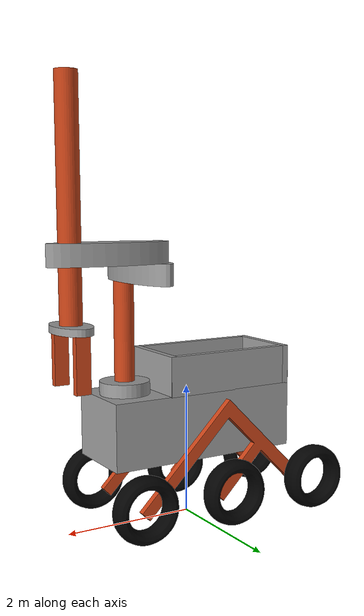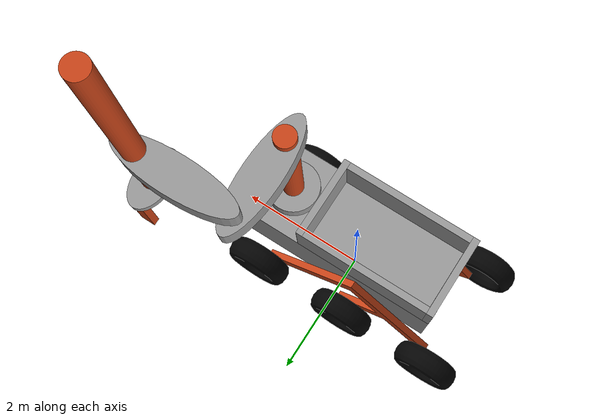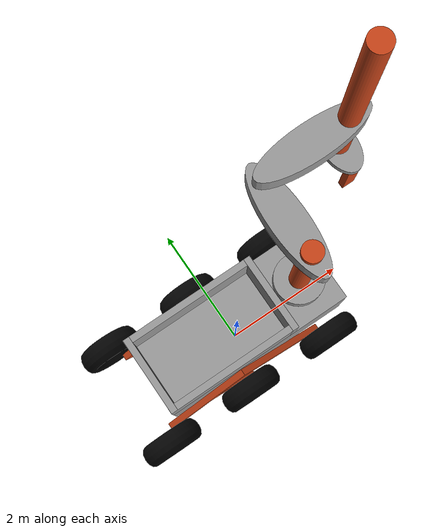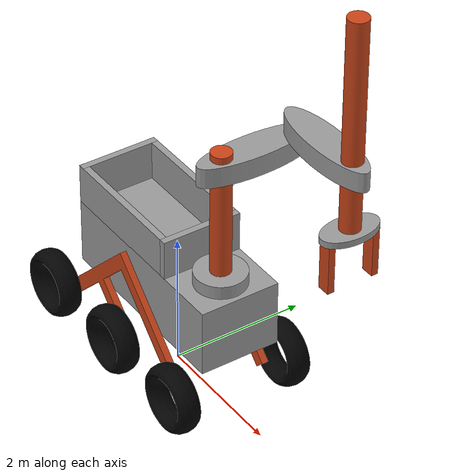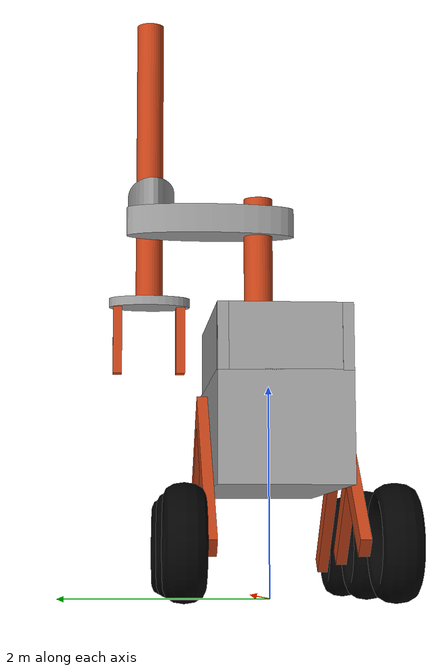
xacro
<?xml version="1.0"?>
<robot name="rover" xmlns:xacro="http://www.ros.org/wiki/xacro">

  <xacro:include filename="$(find rover_description)/urdf/base/robot_base.urdf.xacro"/>
  <xacro:include filename="$(find rover_description)/urdf/wheels/rover_wheels.urdf.xacro"/>
  <xacro:include filename="$(find rover_description)/urdf/arm/scara.urdf.xacro"/>
  <xacro:include filename="$(find rover_description)/urdf/sensors/camera.urdf.xacro"/>
  <xacro:include filename="$(find rover_description)/urdf/sensors/imu_sensor.urdf.xacro"/>

  <xacro:property name="PI" value="3.1415926535897931"/>

  <xacro:arg name="robot_ns" default=""/>
  <xacro:arg name="prefix" default=""/>

  <xacro:robot_base/>
  <xacro:rover_wheels parent="base_link"/>
  <xacro:scara parent="base_link"/>

  <xacro:sensor_camera node_name="front_camera" node_namespace="$(arg robot_ns)" frame_prefix="$(arg prefix)front_camera_" parent="$(arg prefix)base_link">
  <origin xyz="1.4 0.0 0.5" rpy="0 0 0"/>
  </xacro:sensor_camera>
  <xacro:sensor_camera node_name="arm_camera" node_namespace="$(arg robot_ns)" frame_prefix="$(arg prefix)arm_camera_" parent="$(arg prefix)l3_arm_link" >
          <origin xyz="0.0 0.0 -1.2" rpy="0 1.57 1.57"/>
  </xacro:sensor_camera>

  <xacro:sensor_imu ns="$(arg robot_ns)" prefix="$(arg prefix)imu_" parent="$(arg prefix)base_link">
          <origin xyz="0.0 0.0 0.0" rpy="0 0 0"/>
  </xacro:sensor_imu>

<!-- Gazebo ROS control plugins -->
<xacro:include filename="$(find rover_description)/urdf/ros2_control.urdf.xacro"/>
<xacro:arg name="config_controllers" default="$(find rover_description)/config/robot_controllers.yaml"/>
<xacro:arg name="update_rate" default="20"/>
<xacro:ros2_control/>

</robot>

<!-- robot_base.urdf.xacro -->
<robot name="robot_body" xmlns:xacro="http://wiki.ros.org/xacro">
    <xacro:macro name="robot_base">
    <xacro:property name="mesh_path" value="file://$(find rover_description)/meshes/dae"/>
    <link name="base_footprint"/>

    <joint name="base_footprint_to_base_link" type="fixed">
        <origin xyz="0 0 1.5" rpy="0 0 0"/>
        <parent link="base_footprint"/>
        <child link="base_link"/>
    </joint>

    <link name="base_link"/>

    <joint name="base_link_to_body_link" type="fixed">
        <origin xyz="0 0 0" rpy="0 0 0"/>
        <parent link="base_link"/>
        <child link="body_link"/>
    </joint>

    <joint name="body_back_box_link_joint" type="fixed">
        <origin rpy="0.00000 0.00000 0.00000" xyz="-1.45000 0.00000 0.79130"/>
        <parent link="body_link"/>
        <child link="body_back_box_link"/>
    </joint>
    <joint name="body_front_box_link_joint" type="fixed">
        <origin rpy="0.00000 0.00000 0.00000" xyz="0.54967 0.00000 0.79130"/>
        <parent link="body_link"/>
        <child link="body_front_box_link"/>
    </joint>
    <joint name="body_left_box_link_joint" type="fixed">
        <origin rpy="0.00000 0.00000 1.57080" xyz="-0.45192 -0.55000 0.79129"/>
        <parent link="body_link"/>
        <child link="body_left_box_link"/>
    </joint>
    <joint name="body_right_box_link_joint" type="fixed">
        <origin rpy="0.00000 0.00000 1.57080" xyz="-0.45192 0.55000 0.79129"/>
        <parent link="body_link"/>
        <child link="body_right_box_link"/>
    </joint>

    <link name="body_link">
        <collision name="body_collision">
        <origin rpy="0.00000 0.00000 0.00000" xyz="0.00000 0.00000 0.00000"/>
        <geometry>
            <box size="3.00000 1.20000 1.00000"/>
        </geometry>
        </collision>
        <inertial>
        <inertia ixx="10.16667" ixy="0.00000" ixz="0.00000" iyy="41.66667" iyz="0.00000" izz="43.50000"/>
        <origin rpy="0.00000 0.00000 0.00000" xyz="0.00000 0.00000 0.00000"/>
        <mass value="50.00000"/>
        </inertial>
        <visual name="body">
        <material name="Material.005"/>
        <origin rpy="0.00000 0.00000 0.00000" xyz="0.00000 0.00000 0.00000"/>
        <geometry>
            <box size="3.00000 1.20000 1.00000"/>
        </geometry>
        </visual>
    </link>

    <link name="body_front_box_link">
        <collision name="body_front_box_collision">
            <origin rpy="0.00000 0.00000 0.00000" xyz="0.00000 0.00000 0.00000"/>
            <geometry>
            <box size="0.10000 1.20000 0.60000"/>
            </geometry>
        </collision>
        <visual name="body_front_box">
            <material name="Material.005"/>
            <origin rpy="0.00000 0.00000 0.00000" xyz="0.00000 0.00000 0.00000"/>
            <geometry>
            <box size="0.10000 1.20000 0.60000"/>
            </geometry>
        </visual>
    </link>
    <link name="body_left_box_link">
        <collision name="body_left_box_collision">
            <origin rpy="0.00000 0.00000 -0.00000" xyz="-0.00000 -0.00000 0.00000"/>
            <geometry>
            <box size="0.10000 2.10000 0.60000"/>
            </geometry>
        </collision>
        <visual name="body_left_box">
            <material name="Material.005"/>
            <origin rpy="0.00000 0.00000 0.00000" xyz="0.00000 -0.00000 0.00000"/>
            <geometry>
            <box size="0.10000 2.10000 0.60000"/>
            </geometry>
        </visual>
        </link>
        <link name="body_right_box_link">
        <collision name="body_right_box_collision">
            <origin rpy="0.00000 0.00000 -0.00000" xyz="0.00000 0.00000 0.00000"/>
            <geometry>
            <box size="0.10000 2.10000 0.60000"/>
            </geometry>
        </collision>
        <visual name="body_right_box">
            <material name="Material.005"/>
            <origin rpy="0.00000 0.00000 0.00000" xyz="0.00000 0.00000 0.00000"/>
            <geometry>
            <box size="0.10000 2.10000 0.60000"/>
            </geometry>
        </visual>
    </link>

    <link name="body_back_box_link">
        <collision name="body_back_box_collision">
            <origin rpy="0.00000 0.00000 0.00000" xyz="0.00000 0.00000 0.00000"/>
            <geometry>
                <box size="0.10000 1.20000 0.60000"/>
            </geometry>
        </collision>
        <visual name="body_back_box">
            <material name="Material.005"/>
            <origin rpy="0.00000 0.00000 0.00000" xyz="0.00000 0.00000 0.00000"/>
            <geometry>
                <box size="0.10000 1.20000 0.60000"/>
            </geometry>
        </visual>
    </link>

    </xacro:macro>

</robot>

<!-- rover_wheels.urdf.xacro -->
<robot name="rover_wheels" xmlns:xacro="http://wiki.ros.org/xacro">

  <xacro:property name="mesh_path" value="file://$(find rover_description)/meshes/dae"/>

  <xacro:macro name="rover_wheels" params="parent">

    <joint name="axis_left_link_joint" type="fixed">
      <origin rpy="1.60974 -0.01480 -0.06763" xyz="-0.35085 -0.70000 -0.47400"/>
      <parent link="body_link"/>
      <child link="axis_left_link"/>
    </joint>

    <joint name="axis_right_link_joint" type="fixed">
      <origin rpy="-1.57080 0.00000 -0.02477" xyz="-0.35085 0.70000 -0.47400"/>
      <parent link="body_link"/>
      <child link="axis_right_link"/>
    </joint>

    <link name="axis_left_link">
      <collision name="axis_left_collision">
        <origin rpy="-1.55093 0.07494 0.77002" xyz="-0.01304 0.01116 -0.07670"/>
        <geometry>
          <mesh filename="${mesh_path}/Cube.005.dae" scale="0.95000 0.05000 0.10000"/>
        </geometry>
      </collision>
      <inertial>
        <inertia ixx="0.00100" ixy="-0.00000" ixz="-0.00000" iyy="0.00100" iyz="0.00000" izz="0.00100"/>
        <origin rpy="0.00000 0.00000 0.00000" xyz="0.00000 -0.00000 0.00000"/>
        <mass value="3.00000"/>
      </inertial>
      <visual name="axis_left">
        <material name="orange"/>
        <origin rpy="-1.55093 0.07494 0.77002" xyz="-0.00365 -0.00204 -0.05382"/>
        <geometry>
          <mesh filename="${mesh_path}/Cube.005.dae" scale="0.95000 0.05000 0.10000"/>
        </geometry>
      </visual>
    </link>

    <link name="axis_right_link">
      <collision name="axis_right_collision">
        <origin rpy="1.58831 -0.01751 -0.78555" xyz="-0.02891 0.01341 -0.04021"/>
        <geometry>
          <mesh filename="${mesh_path}/Cube.007.dae" scale="0.95000 0.05000 0.10000"/>
        </geometry>
      </collision>
      <inertial>
        <inertia ixx="0.38352" ixy="-0.00000" ixz="0.08781" iyy="1.49498" iyz="0.00000" izz="1.11529"/>
        <origin rpy="0.00000 0.00000 0.00000" xyz="0.00095 0.00000 -0.03832"/>
        <mass value="3.00000"/>
      </inertial>
      <visual name="axis_right">
        <material name="orange"/>
        <origin rpy="1.58831 -0.01751 -0.78555" xyz="0.00095 0.00000 -0.03832"/>
        <geometry>
          <mesh filename="${mesh_path}/Cube.007.dae" scale="0.95000 0.05000 0.10000"/>
        </geometry>
      </visual>
    </link>

    <joint name="back_left_wheel_link_joint" type="continuous">
      <limit effort="100.0" velocity="20.0"/>
      <dynamics damping="0.05" friction="0.1"/>
      <origin rpy="-0.03655 0.06700 -0.01743" xyz="-1.43329 -0.48979 0.41533"/>
      <parent link="axis_left_link"/>
      <child link="back_left_wheel_link"/>
      <axis xyz="0 0 1"/>
    </joint>

    <joint name="front_left_wheel_link_joint" type="continuous">
      <limit effort="100.0" velocity="20.0"/>
      <dynamics damping="0.05" friction="0.1"/>
      <origin rpy="-0.03655 0.06700 -0.01743" xyz="1.55952 -0.54195 0.21447"/>
      <parent link="axis_left_link"/>
      <child link="front_left_wheel_link"/>
      <axis xyz="0 0 1"/>
    </joint>

    <joint name="mid_left_wheel_link_joint" type="continuous">
      <limit effort="100.0" velocity="20.0"/>
      <dynamics damping="0.05" friction="0.1"/>
      <origin rpy="-0.03655 0.06700 -0.01743" xyz="0.06311 -0.51587 0.31490"/>
      <parent link="axis_left_link"/>
      <child link="mid_left_wheel_link"/>
      <axis xyz="0 0 1"/>
    </joint>

    <joint name="back_right_wheel_link_joint" type="continuous">
      <limit effort="100.0" velocity="20.0"/>
      <dynamics damping="0.05" friction="0.1"/>
      <origin rpy="3.14159 -0.02477 -0.00000" xyz="-1.45614 0.52600 0.26402"/>
      <parent link="axis_right_link"/>
      <child link="back_right_wheel_link"/>
      <axis xyz="0 0 1"/>
    </joint>

    <joint name="front_right_wheel_link_joint" type="continuous">
      <limit effort="100.0" velocity="20.0"/>
      <dynamics damping="0.05" friction="0.1"/>
      <origin rpy="3.14159 -0.02477 -0.00000" xyz="1.54294 0.52600 0.33832"/>
      <parent link="axis_right_link"/>
      <child link="front_right_wheel_link"/>
      <axis xyz="0 0 1"/>
    </joint>

    <joint name="mid_right_wheel_link_joint" type="continuous">
      <limit effort="100.0" velocity="20.0"/>
      <dynamics damping="0.05" friction="0.1"/>
      <origin rpy="3.14159 -0.02477 -0.00000" xyz="0.04340 0.52600 0.30117"/>
      <parent link="axis_right_link"/>
      <child link="mid_right_wheel_link"/>
      <axis xyz="0 0 1"/>
    </joint>

    <link name="back_left_wheel_link">
      <collision name="back_left_wheel_collision">
        <origin rpy="-0.00497 -0.00000 0.00000" xyz="-0.00000 0.00042 -0.12869"/>
        <geometry>
          <cylinder length="0.2" radius="0.5"/>
        </geometry>
      </collision>
      <inertial>
        <inertia ixx="0.19403" ixy="-0.00000" ixz="0.00000" iyy="0.35189" iyz="-0.00000" izz="0.19403"/>
        <origin rpy="0.00000 0.00000 0.00000" xyz="-0.00000 0.00042 -0.12869"/>
        <mass value="3.00000"/>
      </inertial>
      <visual name="back_left_wheel">
        <material name="wheels"/>
        <origin rpy="-0.00249 -0.00000 0.00000" xyz="-0.00000 0.00042 -0.12869"/>
        <geometry>
          <mesh filename="${mesh_path}/Torus.005.dae" scale="0.40000 0.40000 0.70000"/>
        </geometry>
      </visual>
    </link>

    <link name="front_left_wheel_link">
      <collision name="front_left_wheel_collision">
        <origin rpy="-0.00497 -0.00000 0.00000" xyz="0.00000 0.00043 -0.12796"/>
        <geometry>
          <cylinder length="0.2" radius="0.5"/>
        </geometry>
      </collision>
      <inertial>
        <inertia ixx="0.19403" ixy="-0.00000" ixz="0.00000" iyy="0.35189" iyz="-0.00000" izz="0.19403"/>
        <origin rpy="0.00000 0.00000 0.00000" xyz="0.00000 0.00043 -0.12796"/>
        <mass value="3.00000"/>
      </inertial>
      <visual name="front_left_wheel">
        <material name="wheels"/>
        <origin rpy="-0.00249 -0.00000 0.00000" xyz="0.00000 0.00043 -0.12796"/>
        <geometry>
          <mesh filename="${mesh_path}/Torus.009.dae" scale="0.40000 0.40000 0.70000"/>
        </geometry>
      </visual>
    </link>

      <link name="mid_left_wheel_link">
      <collision name="mid_left_wheel_collision">
        <origin rpy="-0.00497 -0.00000 0.00000" xyz="0.00000 0.00042 -0.12869"/>
        <geometry>
          <cylinder length="0.2" radius="0.5"/>
        </geometry>
      </collision>
      <inertial>
        <inertia ixx="0.19403" ixy="-0.00000" ixz="0.00000" iyy="0.35189" iyz="-0.00000" izz="0.19403"/>
        <origin rpy="0.00000 0.00000 0.00000" xyz="0.00000 0.00042 -0.12869"/>
        <mass value="3.00000"/>
      </inertial>
      <visual name="mid_left_wheel">
        <material name="wheels"/>
        <origin rpy="-0.00249 -0.00000 0.00000" xyz="0.00000 0.00042 -0.12869"/>
        <geometry>
          <mesh filename="${mesh_path}/Torus.006.dae" scale="0.40000 0.40000 0.70000"/>
        </geometry>
      </visual>
    </link>

    <link name="back_right_wheel_link">
      <collision name="back_right_wheel_collision">
        <origin rpy="-3.14159 0.00000 0.00000" xyz="-0.00000 0.00000 0.10000"/>
        <geometry>
          <cylinder length="0.2" radius="0.5"/>
        </geometry>
      </collision>
      <inertial>
        <inertia ixx="0.19403" ixy="0.00000" ixz="0.00000" iyy="0.35189" iyz="-0.00000" izz="0.19403"/>
        <origin rpy="0.00000 0.00000 0.00000" xyz="-0.00000 0.00000 0.10000"/>
        <mass value="3.00000"/>
      </inertial>
      <visual name="back_right_wheel">
        <material name="wheels"/>
        <origin rpy="-0.00000 0.00000 0.00000" xyz="-0.00000 0.00000 0.10000"/>
        <geometry>
          <mesh filename="${mesh_path}/Torus.dae" scale="0.40000 0.40000 0.70000"/>
        </geometry>
      </visual>
    </link>

    <link name="front_right_wheel_link">
      <collision name="front_right_wheel_collision">
        <origin rpy="-3.14159 0.00000 0.00000" xyz="0.00000 0.00000 0.10000"/>
        <geometry>
          <cylinder length="0.2" radius="0.5"/>
        </geometry>
      </collision>
      <inertial>
        <inertia ixx="0.19403" ixy="0.00000" ixz="0.00000" iyy="0.35189" iyz="-0.00000" izz="0.19403"/>
        <origin rpy="0.00000 0.00000 0.00000" xyz="-0.00000 0.00000 0.10000"/>
        <mass value="3.00000"/>
      </inertial>
      <visual name="front_right_wheel">
        <material name="wheels"/>
        <origin rpy="-0.00000 0.00000 0.00000" xyz="0.00000 0.00000 0.10000"/>
        <geometry>
          <mesh filename="${mesh_path}/Torus.008.dae" scale="0.40000 0.40000 0.70000"/>
        </geometry>
      </visual>
    </link>

    <link name="mid_right_wheel_link">
      <collision name="mid_right_wheel_collision">
        <origin rpy="-3.14159 0.00000 0.00000" xyz="-0.00000 0.00000 0.11498"/>
        <geometry>
          <cylinder length="0.2" radius="0.5"/>
        </geometry>
      </collision>
      <inertial>
        <inertia ixx="0.19403" ixy="0.00000" ixz="0.00000" iyy="0.35189" iyz="-0.00000" izz="0.19403"/>
        <origin rpy="0.00000 0.00000 0.00000" xyz="-0.00000 0.00000 0.10000"/>
        <mass value="3.00000"/>
      </inertial>
      <visual name="mid_right_wheel">
        <material name="wheels"/>
        <origin rpy="-0.00000 0.00000 0.00000" xyz="-0.00000 0.00000 0.10000"/>
        <geometry>
          <mesh filename="${mesh_path}/Torus.007.dae" scale="0.40000 0.40000 0.70000"/>
        </geometry>
      </visual>
    </link>

    <gazebo reference="back_left_wheel_link">
      <mu1>5</mu1>
      <mu2>5</mu2>
    </gazebo>
    <gazebo reference="mid_left_wheel_link">
      <mu1>5</mu1>
      <mu2>5</mu2>
    </gazebo>
    <gazebo reference="front_left_wheel_link">
      <mu1>5</mu1>
      <mu2>5</mu2>
    </gazebo>
    <gazebo reference="back_right_wheel_link">
      <mu1>5</mu1>
      <mu2>5</mu2>
    </gazebo>
    <gazebo reference="mid_right_wheel_link">
      <mu1>5</mu1>
      <mu2>5</mu2>
    </gazebo>
    <gazebo reference="front_right_wheel_link">
      <mu1>5</mu1>
      <mu2>5</mu2>
    </gazebo>

    <material name="wheels">
      <color rgba="0.01176 0.01176 0.01176 1.00000"/>
    </material>

  </xacro:macro>

</robot>

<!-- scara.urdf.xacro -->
<robot name="scara" xmlns:xacro="http://wiki.ros.org/xacro">
    <xacro:include filename="$(find rover_description)/urdf/arm/gripper.urdf.xacro"/>
    <xacro:property name="mesh_path" value="file://$(find rover_description)/meshes/dae"/>
    <xacro:macro name="scara" params="parent">

    <joint name="fixed_base_arm_link_joint" type="fixed">
        <origin rpy="0.00000 0.00000 0.00000" xyz="1.05420 -0.01261 0.59836"/>
        <parent link="body_link"/>
        <child link="fixed_base_arm_link"/>
    </joint>

    <joint name="l0_arm_link_joint" type="fixed">
        <origin rpy="0.00000 0.00000 0.00000" xyz="0.00000 0.00000 -0.04593"/>
        <parent link="fixed_base_arm_link"/>
        <child link="l0_arm_link"/>
    </joint>
    <joint name="l1_arm_link_joint" type="continuous">
        <limit effort="150.00000" velocity="3.00000"/>
        <origin rpy="0.00000 0.00000 0.00000" xyz="0.00000 0.00480 1.93831"/>
        <parent link="l0_arm_link"/>
        <child link="l1_arm_link"/>
        <axis xyz="0.00000 0.00000 1.00000"/>
    </joint>
    <joint name="l2_arm_link_joint" type="continuous">
        <limit effort="150.00000" velocity="3.00000"/>
        <origin rpy="0.00000 0.00000 1.57080" xyz="0.04172 1.09520 0.15762"/>
        <parent link="l1_arm_link"/>
        <child link="l2_arm_link"/>
        <axis xyz="0.00000 0.00000 1.00000"/>
    </joint>
    <joint name="l3_arm_link_joint" type="prismatic">
        <limit lower="-2.40000" upper="0.80000" effort="150.00000" velocity="3.00000"/>
        <origin rpy="0.00000 0.00000 -1.57080" xyz="0.00000 -1.26247 0.09521"/>
        <parent link="l2_arm_link"/>
        <child link="l3_arm_link"/>
        <axis xyz="0.00000 0.00000 1.00000"/>
    </joint>
    <joint name="clamp_base_link_joint" type="continuous">
      <limit effort="150.00000" velocity="3.00000"/>
      <origin rpy="0.00000 0.00000 0.00000" xyz="-0.00223 -0.00306 -0.95588"/>
      <parent link="l3_arm_link"/>
      <child link="clamp_base_link"/>
      <axis xyz="0.00000 0.00000 1.00000"/>
    </joint>

    <link name="fixed_base_arm_link">
        <collision name="fixed_base_arm_collision">
            <origin rpy="0.00000 0.00000 0.00000" xyz="0.00000 0.00000 0.00000"/>
            <geometry>
                <mesh filename="${mesh_path}/Cylinder.dae" scale="0.37500 0.37500 0.10000"/>
            </geometry>
        </collision>
        <inertial>
            <inertia ixx="0.19132" ixy="0.00000" ixz="0.00000" iyy="0.19132" iyz="0.00000" izz="0.34931"/>
            <origin rpy="0.00000 0.00000 0.00000" xyz="0.00000 0.00000 0.00000"/>
            <mass value="5.00000"/>
        </inertial>
        <visual name="fixed_base_arm">
            <material name="Material.005"/>
            <origin rpy="0.00000 0.00000 0.00000" xyz="0.00000 0.00000 0.00000"/>
            <geometry>
                <mesh filename="${mesh_path}/Cylinder.dae" scale="0.37500 0.37500 0.10000"/>
            </geometry>
        </visual>
    </link>

    <link name="l0_arm_link">
        <collision name="l0_arm_collision">
            <origin rpy="0.00000 0.00000 0.00000" xyz="0.00000 0.00000 1.04593"/>
            <geometry>
                <mesh filename="${mesh_path}/Cylinder.001.dae" scale="0.15000 0.15000 1.00000"/>
            </geometry>
        </collision>
        <inertial>
            <inertia ixx="1.69461" ixy="0.00000" ixz="0.00000" iyy="1.69461" iyz="0.00000" izz="0.05589"/>
            <origin rpy="0.00000 0.00000 0.00000" xyz="0.00000 0.00000 1.04593"/>
            <mass value="5.00000"/>
        </inertial>
        <visual name="l0_arm">
            <material name="orange"/>
            <origin rpy="0.00000 0.00000 0.00000" xyz="0.00000 0.00000 1.04593"/>
            <geometry>
                <mesh filename="${mesh_path}/Cylinder.001.dae" scale="0.15000 0.15000 1.00000"/>
            </geometry>
        </visual>
  </link>
  <link name="l1_arm_link">
    <collision name="l1_arm_collision">
      <origin rpy="0.00000 0.00000 0.00000" xyz="0.00000 0.49520 -0.14238"/>
      <geometry>
        <mesh filename="${mesh_path}/Cylinder.002.dae" scale="0.25000 0.87500 0.15000"/>
      </geometry>
    </collision>
    <inertial>
      <inertia ixx="0.98840" ixy="-0.00000" ixz="0.00000" iyy="0.11512" iyz="-0.00000" izz="1.02853"/>
      <origin rpy="0.00000 0.00000 0.00000" xyz="0.00000 0.49520 -0.14238"/>
      <mass value="5.00000"/>
    </inertial>
    <visual name="l1_arm">
      <material name="Material.005"/>
      <origin rpy="0.00000 0.00000 0.00000" xyz="0.00000 0.49520 -0.14238"/>
      <geometry>
        <mesh filename="${mesh_path}/Cylinder.002.dae" scale="0.25000 0.87500 0.15000"/>
      </geometry>
    </visual>
  </link>
  <link name="l2_arm_link">
    <collision name="l2_arm_collision">
      <origin rpy="0.00000 0.00000 0.00000" xyz="0.00000 -0.70828 0.00000"/>
      <geometry>
        <mesh filename="${mesh_path}/Cylinder.003.dae" scale="0.25000 0.87500 0.15000"/>
      </geometry>
    </collision>
    <inertial>
      <inertia ixx="0.04605" ixy="-0.00000" ixz="0.00000" iyy="0.39536" iyz="-0.00000" izz="0.41141"/>
      <origin rpy="0.00000 0.00000 0.00000" xyz="0.00000 -0.70828 0.00000"/>
      <mass value="2.00000"/>
    </inertial>
    <visual name="l2_arm">
      <material name="Material.005"/>
      <origin rpy="0.00000 0.00000 -0.00000" xyz="0.00000 -0.70828 0.00000"/>
      <geometry>
        <mesh filename="${mesh_path}/Cylinder.003.dae" scale="0.25000 0.87500 0.15000"/>
      </geometry>
    </visual>
  </link>
  <link name="l3_arm_link">
    <collision name="l3_arm_collision">
      <origin rpy="0.00000 0.00000 0.00000" xyz="0.00000 0.00000 0.58392"/>
      <geometry>
        <mesh filename="${mesh_path}/Cylinder.004.dae" scale="0.15000 0.15000 1.60000"/>
      </geometry>
    </collision>
    <inertial>
      <inertia ixx="1.71784" ixy="0.00000" ixz="0.00000" iyy="1.71784" iyz="0.00000" izz="0.02236"/>
      <origin rpy="0.00000 0.00000 0.00000" xyz="0.00000 0.00000 0.58392"/>
      <mass value="2.00000"/>
    </inertial>
    <visual name="l3_arm">
      <material name="orange"/>
      <origin rpy="0.00000 0.00000 0.00000" xyz="0.00000 0.00000 0.58392"/>
      <geometry>
        <mesh filename="${mesh_path}/Cylinder.004.dae" scale="0.15000 0.15000 1.60000"/>
      </geometry>
    </visual>
  </link>

  <link name="clamp_base_link">
    <collision name="clamp_base_collision">
        <origin rpy="0.00000 0.00000 0.00000" xyz="0.00000 0.00000 -0.08713"/>
        <geometry>
        <mesh filename="${mesh_path}/Cylinder.005.dae" scale="0.25000 0.45000 0.05000"/>
        </geometry>
    </collision>
    <inertial>
        <inertia ixx="0.02557" ixy="-0.00000" ixz="0.00000" iyy="0.00818" iyz="-0.00000" izz="0.03291"/>
        <origin rpy="0.00000 0.00000 0.00000" xyz="0.00000 0.00000 -0.08713"/>
        <mass value="0.50000"/>
    </inertial>
    <visual name="clamp_base">
        <material name="Material.005"/>
        <origin rpy="0.00000 0.00000 0.00000" xyz="0.00000 0.00000 -0.08713"/>
        <geometry>
        <mesh filename="${mesh_path}/Cylinder.005.dae" scale="0.25000 0.45000 0.05000"/>
        </geometry>
    </visual>
  </link>

  <xacro:gripper parent="clamp_base_link">
    <origin rpy="0.00000 0.00000 0.00000" xyz="-0.00223 -0.00306 -0.95588"/>
  </xacro:gripper>

</xacro:macro>
</robot>

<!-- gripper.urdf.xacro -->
<robot name="gripper" xmlns:xacro="http://wiki.ros.org/xacro">
    <xacro:macro name="gripper" params="parent *origin">
    <xacro:property name="mesh_path" value="file://$(find rover_description)/meshes/dae"/>

    <joint name="left_clamp_link_joint" type="prismatic">
        <limit lower="0.00000" upper="0.40000" effort="50.00000" velocity="1.50000"/>
        <origin rpy="-1.57080 0.00000 0.00000" xyz="0.01328 -0.34694 -0.48139"/>
        <parent link="${parent}"/>
        <child link="left_clamp_link"/>
        <axis xyz="0.00000 0.00000 1.00000"/>
    </joint>
    <joint name="right_clamp_link_joint" type="prismatic">
        <limit lower="0.00000" upper="0.40000" effort="50.00000" velocity="1.50000"/>
        <origin rpy="1.57080 0.00000 0.00000" xyz="0.01328 0.35306 -0.50058"/>
        <parent link="${parent}"/>
        <child link="right_clamp_link"/>
        <axis xyz="0.00000 0.00000 1.00000"/>
    </joint>

    <link name="left_clamp_link">
    <collision name="left_clamp_collision">
        <origin rpy="-1.57080 0.00000 0.00000" xyz="0.00000 0.02217 0.00000"/>
        <geometry>
        <mesh filename="${mesh_path}/Cube.003.dae" scale="0.10000 0.05000 0.37500"/>
        </geometry>
    </collision>
    <inertial>
        <inertia ixx="0.02385" ixy="0.00000" ixz="0.00000" iyy="0.02510" iyz="-0.00000" izz="0.00208"/>
        <origin rpy="0.00000 0.00000 0.00000" xyz="0.00000 0.02217 0.00000"/>
        <mass value="0.50000"/>
    </inertial>
    <visual name="left_clamp">
        <material name="orange"/>
        <origin rpy="1.57080 0.00000 0.00000" xyz="0.00000 0.02217 0.00000"/>
        <geometry>
        <box size="0.20000 0.10000 0.75000"/>
        </geometry>
    </visual>
    </link>
        <link name="right_clamp_link">
        <collision name="right_clamp_collision">
            <origin rpy="-1.57080 0.00000 0.00000" xyz="0.00000 0.06532 -0.00000"/>
            <geometry>
                <mesh filename="${mesh_path}/Cube.004.dae" scale="0.10000 0.05000 0.37500"/>
            </geometry>
        </collision>
        <inertial>
        <inertia ixx="0.02385" ixy="0.00000" ixz="0.00000" iyy="0.02510" iyz="0.00000" izz="0.00208"/>
            <origin rpy="0.00000 0.00000 0.00000" xyz="0.00000 0.06532 0.00000"/>
            <mass value="0.50000"/>
        </inertial>
        <visual name="right_clamp">
            <material name="orange"/>
            <origin rpy="-1.57080 0.00000 0.00000" xyz="0.00000 -0.00301 0.00000"/>
        <geometry>
            <box size="0.20000 0.10000 0.75000"/>
        </geometry>
        </visual>
    </link>

    <material name="orange">
        <color rgba="0.80000 0.27059 0.09804 1.00000"/>
    </material>
    <material name="Material.005">
        <color rgba="0.61176 0.61176 0.61176 1.00000"/>
    </material>
    </xacro:macro>

</robot>

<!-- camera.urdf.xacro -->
<robot xmlns:xacro="http://wiki.ros.org/xacro">

  <xacro:macro name="sensor_camera" params="node_name node_namespace frame_prefix parent *origin horizontal_fov:=1.089 video_width:=640 video_height:=480">

    <joint name="${frame_prefix}camera_joint" type="fixed">
      <xacro:insert_block name="origin" />
      <parent link="${parent}"/>
      <child link="${frame_prefix}camera_frame"/>
    </joint>

    <link name="${frame_prefix}camera_frame">
      <inertial>
        <mass value="0.01"/>
        <origin xyz="0 0 0" rpy="0 0 0"/>
        <inertia ixx="0.0001" ixy="0" ixz="0"
                 iyy="0.0001" iyz="0"
                 izz="0.0001"/>
      </inertial>
    </link>

    <joint name="${frame_prefix}camera_optical_joint" type="fixed">
      <origin xyz="0 0 0" rpy="-1.5707963267948966 0 -1.5707963267948966"/>
      <parent link="${frame_prefix}camera_frame"/>
      <child link="${frame_prefix}camera_optical_frame"/>
    </joint>

    <link name="${frame_prefix}camera_optical_frame"/>

    <gazebo reference="${frame_prefix}camera_frame">
      <sensor name="${frame_prefix}sensor" type="camera">
        <always_on>true</always_on>
        <visualize>true</visualize>
        <update_rate>30</update_rate>
        <gz_frame_id>${frame_prefix}camera_optical_frame</gz_frame_id>
        <topic>${node_namespace}/${node_name}/image</topic>

        <camera>
          <horizontal_fov>${horizontal_fov}</horizontal_fov>
          <image>
            <width>${video_width}</width>
            <height>${video_height}</height>
            <format>R8G8B8</format>
          </image>
          <clip>
            <near>0.10</near>
            <far>15.0</far>
          </clip>
          <noise>
            <type>gaussian</type>
            <mean>0.0</mean>
            <stddev>0.007</stddev>
          </noise>
        </camera>
      </sensor>
    </gazebo>

  </xacro:macro>
</robot>

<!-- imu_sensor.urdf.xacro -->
<robot xmlns:xacro="http://wiki.ros.org/xacro">

  <xacro:macro name="sensor_imu" params="ns prefix parent *origin">

    <joint name="${prefix}joint" type="fixed">
      <xacro:insert_block name="origin" />
      <parent link="${parent}"/>
      <child link="${prefix}link"/>
    </joint>

    <link name="${prefix}link">
      <inertial>
        <mass value="0.01"/>
        <origin xyz="0 0 0" rpy="0 0 0"/>
        <inertia ixx="0.0001" ixy="0" ixz="0"
                 iyy="0.0001" iyz="0"
                 izz="0.0001"/>
      </inertial>
    </link>

    <gazebo reference="${prefix}link">
      <sensor name="${prefix}sensor" type="imu">
        <always_on>true</always_on>
        <update_rate>30</update_rate>
        <topic>${ns}/imu</topic>
        <imu>
          <angular_velocity>
            <x>
              <noise type="gaussian">
                <mean>0.0</mean>
                <stddev>0.0002</stddev>
              </noise>
            </x>
            <y>
              <noise type="gaussian">
                <mean>0.0</mean>
                <stddev>0.0002</stddev>
              </noise>
            </y>
            <z>
              <noise type="gaussian">
                <mean>0.0</mean>
                <stddev>0.0002</stddev>
              </noise>
            </z>
          </angular_velocity>
          <linear_acceleration>
            <x>
              <noise type="gaussian">
                <mean>0.0</mean>
                <stddev>0.017</stddev>
              </noise>
            </x>
            <y>
              <noise type="gaussian">
                <mean>0.0</mean>
                <stddev>0.017</stddev>
              </noise>
            </y>
            <z>
              <noise type="gaussian">
                <mean>0.0</mean>
                <stddev>0.017</stddev>
              </noise>
            </z>
          </linear_acceleration>
        </imu>
      </sensor>
    </gazebo>

  </xacro:macro>
</robot>
